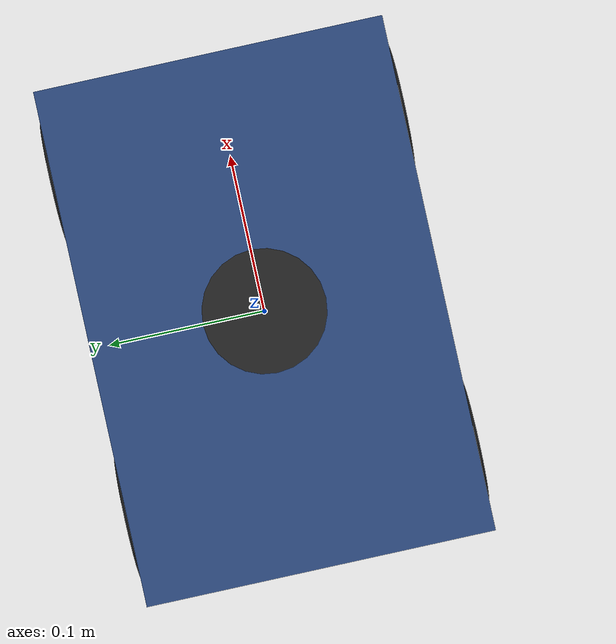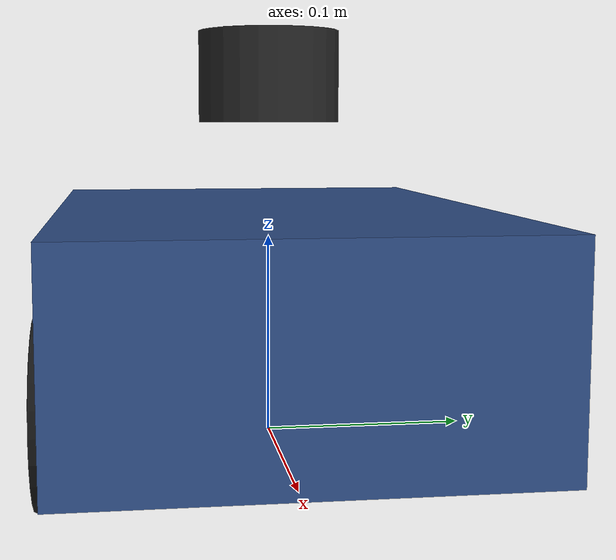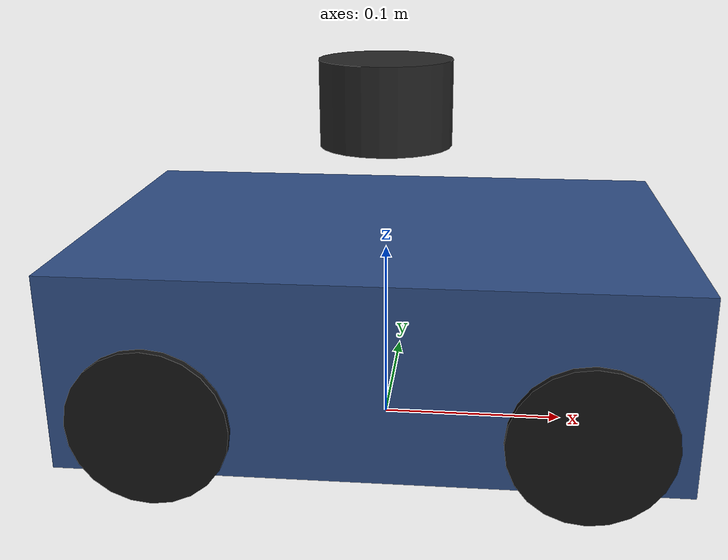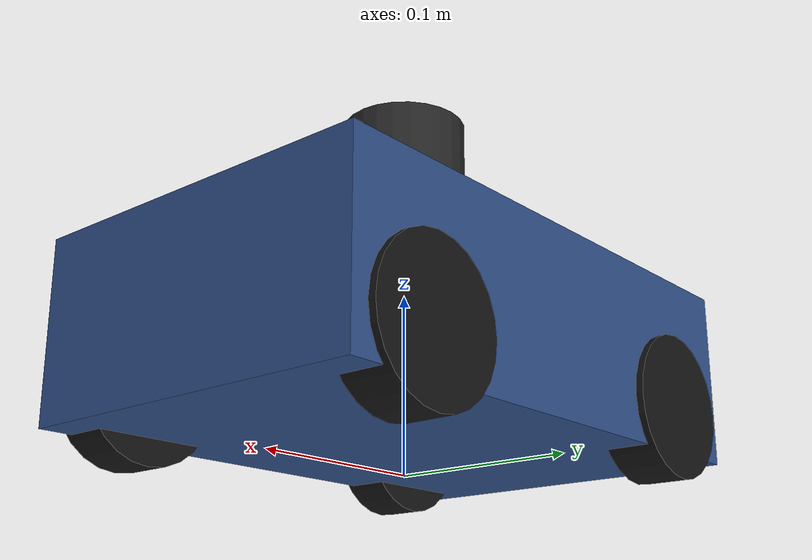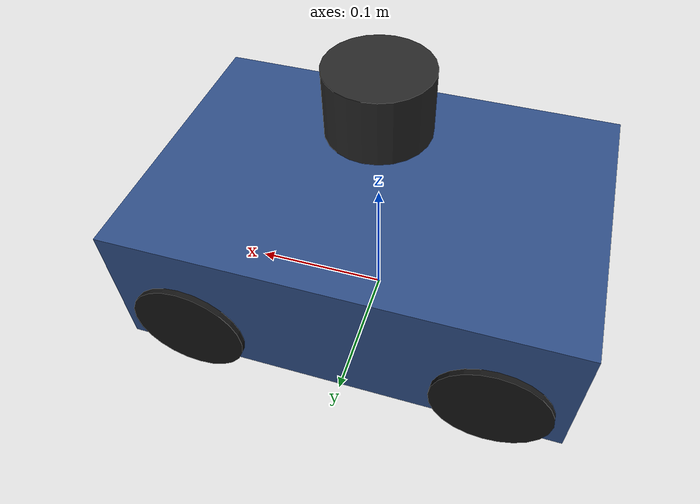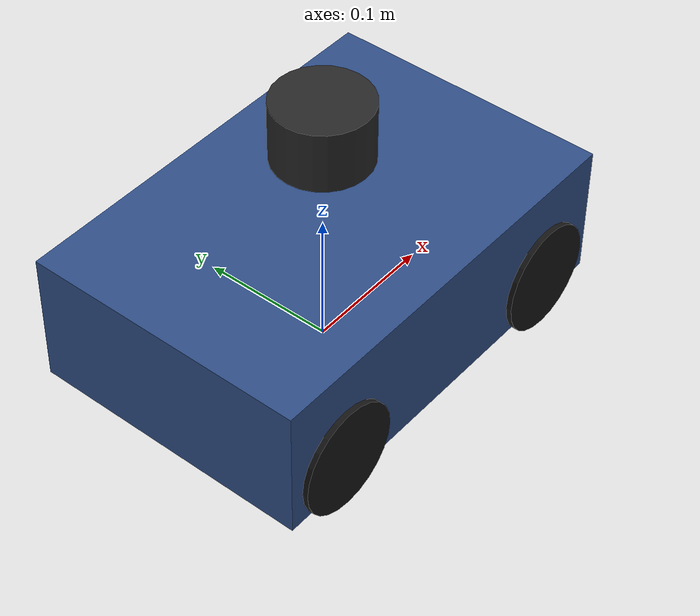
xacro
<?xml version="1.0"?>
<robot xmlns:xacro="http://www.ros.org/wiki/xacro" name="mdetect_robot">
  <xacro:property name="pi" value="3.141592653589793"/>
  <xacro:property name="body_length" value="0.310"/>
  <xacro:property name="body_width" value="0.210"/>
  <xacro:property name="body_height" value="0.100"/>
  <xacro:property name="wheel_radius" value="0.04025"/>
  <xacro:property name="wheel_width" value="0.028"/>
  <xacro:property name="wheel_x" value="0.105"/>
  <xacro:property name="wheel_y" value="0.095"/>
  <xacro:property name="wheel_z" value="0.04025"/>

  <material name="body_colour"><color rgba="0.18 0.30 0.52 1.0"/></material>
  <material name="wheel_colour"><color rgba="0.08 0.08 0.08 1.0"/></material>
  <material name="sensor_colour"><color rgba="0.15 0.15 0.15 1.0"/></material>

  <link name="base_footprint"/>

  <joint name="base_footprint_joint" type="fixed">
    <parent link="base_footprint"/>
    <child link="base_link"/>
    <origin xyz="0 0 0.065" rpy="0 0 0"/>
  </joint>

  <link name="base_link">
    <visual>
      <origin xyz="0 0 0" rpy="0 0 0"/>
      <geometry><box size="${body_length} ${body_width} ${body_height}"/></geometry>
      <material name="body_colour"/>
    </visual>
    <collision>
      <origin xyz="0 0 0" rpy="0 0 0"/>
      <geometry><box size="${body_length} ${body_width} ${body_height}"/></geometry>
    </collision>
    <inertial>
      <origin xyz="0 0 0"/>
      <mass value="4.0"/>
      <inertia ixx="0.018" ixy="0" ixz="0" iyy="0.035" iyz="0" izz="0.045"/>
    </inertial>
  </link>

  <xacro:macro name="wheel" params="name x y">
    <link name="${name}_link">
      <visual>
        <origin xyz="0 0 0" rpy="${pi/2} 0 0"/>
        <geometry><cylinder radius="${wheel_radius}" length="${wheel_width}"/></geometry>
        <material name="wheel_colour"/>
      </visual>
      <collision>
        <origin xyz="0 0 0" rpy="${pi/2} 0 0"/>
        <geometry><cylinder radius="${wheel_radius}" length="${wheel_width}"/></geometry>
      </collision>
      <inertial>
        <mass value="0.35"/>
        <inertia ixx="0.00025" ixy="0" ixz="0" iyy="0.00025" iyz="0" izz="0.00040"/>
      </inertial>
    </link>
    <joint name="${name}_joint" type="continuous">
      <parent link="base_link"/>
      <child link="${name}_link"/>
      <origin xyz="${x} ${y} ${wheel_z - 0.065}" rpy="0 0 0"/>
      <axis xyz="0 -1 0"/>
    </joint>
  </xacro:macro>

  <!-- Motor mapping: 1 and 4 are right; 2 and 3 are left. -->
  <xacro:wheel name="wheel_1" x="${wheel_x}" y="${-wheel_y}"/>
  <xacro:wheel name="wheel_2" x="${wheel_x}" y="${wheel_y}"/>
  <xacro:wheel name="wheel_3" x="${-wheel_x}" y="${wheel_y}"/>
  <xacro:wheel name="wheel_4" x="${-wheel_x}" y="${-wheel_y}"/>

  <link name="lidar_link">
    <visual>
      <geometry><cylinder radius="0.035" length="0.045"/></geometry>
      <material name="sensor_colour"/>
    </visual>
  </link>
  <joint name="lidar_joint" type="fixed">
    <parent link="base_link"/>
    <child link="lidar_link"/>
    <origin xyz="0 0 0.115" rpy="0 0 0"/>
  </joint>

  <link name="imu_link">
    <visual>
      <geometry><box size="0.025 0.020 0.006"/></geometry>
      <material name="sensor_colour"/>
    </visual>
  </link>
  <joint name="imu_joint" type="fixed">
    <parent link="base_link"/>
    <child link="imu_link"/>
    <origin xyz="0.028 0.010 0.045" rpy="0 0 0"/>
  </joint>
</robot>
